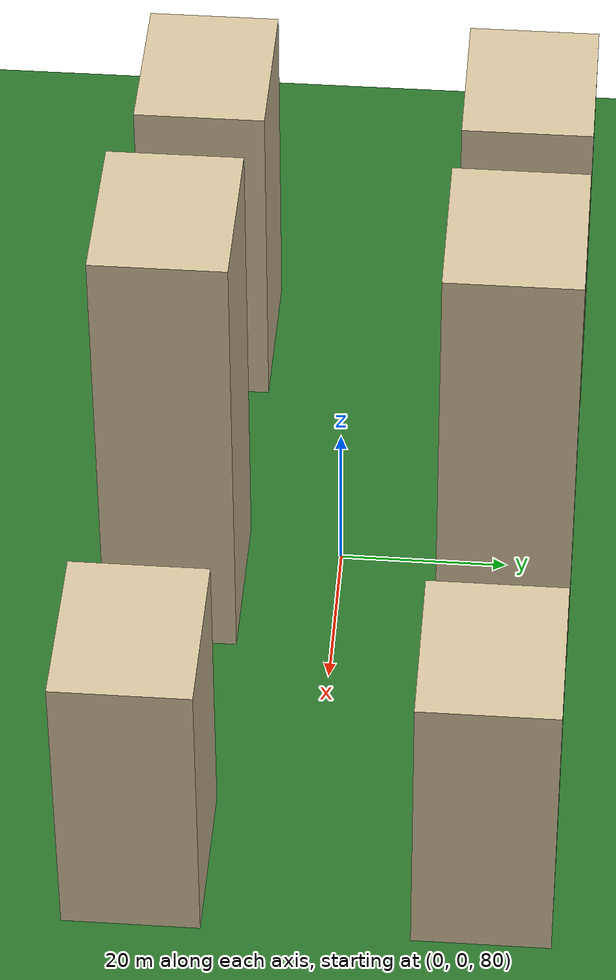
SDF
<sdf version="1.8">
 <world name="urban_canyon">
  <physics name="1ms" type="ignored">
   <max_step_size>0.001</max_step_size>
   <real_time_factor>1.0</real_time_factor>
  </physics>
  <plugin filename="gz-sim-physics-system" name="gz::sim::systems::Physics"/>
  <plugin filename="gz-sim-user-commands-system" name="gz::sim::systems::UserCommands"/>
  <plugin filename="gz-sim-scene-broadcaster-system" name="gz::sim::systems::SceneBroadcaster"/>
  <plugin filename="gz-sim-sensors-system" name="gz::sim::systems::Sensors">
   <render_engine>ogre2</render_engine>
  </plugin>
  <plugin filename="gz-sim-imu-system" name="gz::sim::systems::Imu"/>
  <plugin filename="gz-sim-air-pressure-system" name="gz::sim::systems::AirPressure"/>
  <plugin filename="gz-sim-magnetometer-system" name="gz::sim::systems::Magnetometer"/>
  <plugin filename="gz-sim-navsat-system" name="gz::sim::systems::NavSat"/>
  <plugin filename="gz-sim-air-speed-system" name="gz::sim::systems::AirSpeed"/>
  <plugin filename="gz-sim-wind-effects-system" name="gz::sim::systems::WindEffects">
   <force_approximation_threshold>0.001</force_approximation_threshold>
   <default_wind><linear>0.0 0.0 0.0</linear></default_wind>
  </plugin>
  <light type="directional" name="sun">
   <pose>0 0 10 0 0 0</pose>
   <diffuse>0.8 0.8 0.8 1</diffuse>
   <specular>0.2 0.2 0.2 1</specular>
  </light>
  <model name="ground_plane">
   <static>true</static>
   <pose>0 0 74 0 0 0</pose>
   <link name="link">
    <collision name="collision">
     <geometry><plane><normal>0 0 1</normal><size>600 200</size></plane></geometry>
    </collision>
    <visual name="visual">
     <geometry><plane><normal>0 0 1</normal><size>600 200</size></plane></geometry>
     <material><ambient>0.16 0.45 0.16 1</ambient><diffuse>0.16 0.45 0.16 1</diffuse></material>
    </visual>
   </link>
  </model>
  <model name="tower_0_n">
   <static>true</static>
   <pose>-45.0 20.0 96.5 0 0 0</pose>
   <link name="link">
    <collision name="collision"><geometry><box><size>20.0 16.0 45.0</size></box></geometry></collision>
    <visual name="visual">
     <geometry><box><size>20.0 16.0 45.0</size></box></geometry>
     <material><ambient>0.76 0.69 0.55 1</ambient><diffuse>0.83 0.76 0.61 1</diffuse></material>
    </visual>
   </link>
  </model>
  <model name="tower_0_s">
   <static>true</static>
   <pose>-45.0 -20.0 96.5 0 0 0</pose>
   <link name="link">
    <collision name="collision"><geometry><box><size>20.0 16.0 45.0</size></box></geometry></collision>
    <visual name="visual">
     <geometry><box><size>20.0 16.0 45.0</size></box></geometry>
     <material><ambient>0.76 0.69 0.55 1</ambient><diffuse>0.83 0.76 0.61 1</diffuse></material>
    </visual>
   </link>
  </model>
  <model name="tower_1_n">
   <static>true</static>
   <pose>0.0 20.0 104.0 0 0 0</pose>
   <link name="link">
    <collision name="collision"><geometry><box><size>20.0 16.0 60.0</size></box></geometry></collision>
    <visual name="visual">
     <geometry><box><size>20.0 16.0 60.0</size></box></geometry>
     <material><ambient>0.76 0.69 0.55 1</ambient><diffuse>0.83 0.76 0.61 1</diffuse></material>
    </visual>
   </link>
  </model>
  <model name="tower_1_s">
   <static>true</static>
   <pose>0.0 -20.0 104.0 0 0 0</pose>
   <link name="link">
    <collision name="collision"><geometry><box><size>20.0 16.0 60.0</size></box></geometry></collision>
    <visual name="visual">
     <geometry><box><size>20.0 16.0 60.0</size></box></geometry>
     <material><ambient>0.76 0.69 0.55 1</ambient><diffuse>0.83 0.76 0.61 1</diffuse></material>
    </visual>
   </link>
  </model>
  <model name="tower_2_n">
   <static>true</static>
   <pose>45.0 20.0 93.0 0 0 0</pose>
   <link name="link">
    <collision name="collision"><geometry><box><size>20.0 16.0 38.0</size></box></geometry></collision>
    <visual name="visual">
     <geometry><box><size>20.0 16.0 38.0</size></box></geometry>
     <material><ambient>0.76 0.69 0.55 1</ambient><diffuse>0.83 0.76 0.61 1</diffuse></material>
    </visual>
   </link>
  </model>
  <model name="tower_2_s">
   <static>true</static>
   <pose>45.0 -20.0 93.0 0 0 0</pose>
   <link name="link">
    <collision name="collision"><geometry><box><size>20.0 16.0 38.0</size></box></geometry></collision>
    <visual name="visual">
     <geometry><box><size>20.0 16.0 38.0</size></box></geometry>
     <material><ambient>0.76 0.69 0.55 1</ambient><diffuse>0.83 0.76 0.61 1</diffuse></material>
    </visual>
   </link>
  </model>
  <spherical_coordinates>
   <surface_model>EARTH_WGS84</surface_model>
   <world_frame_orientation>ENU</world_frame_orientation>
   <latitude_deg>47.397971057728974</latitude_deg>
   <longitude_deg>8.546163739800146</longitude_deg>
   <elevation>0</elevation>
  </spherical_coordinates>
 </world>
</sdf>
